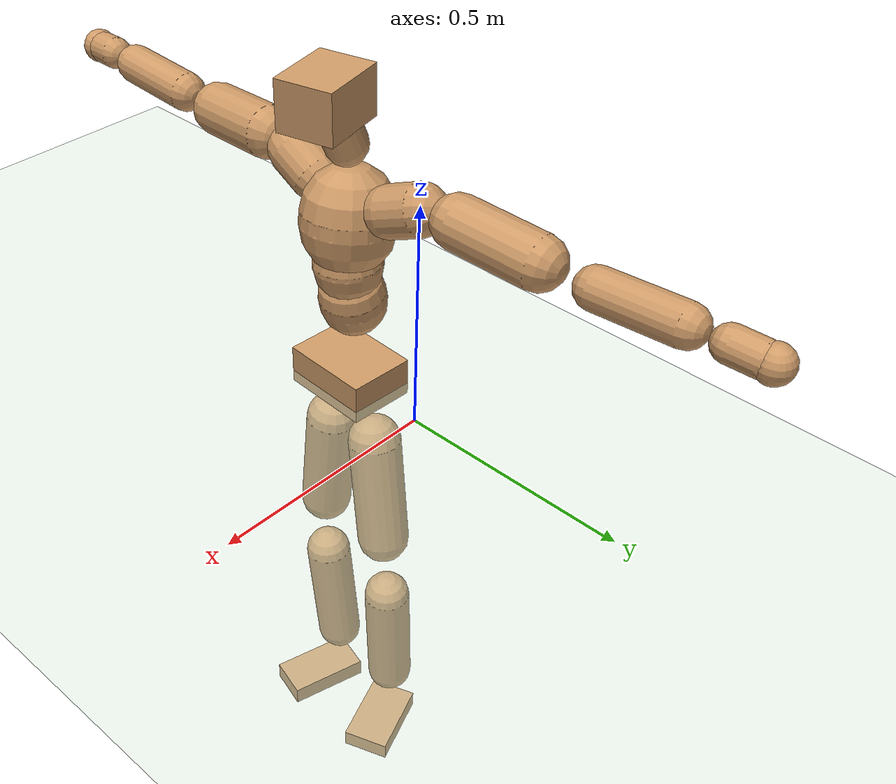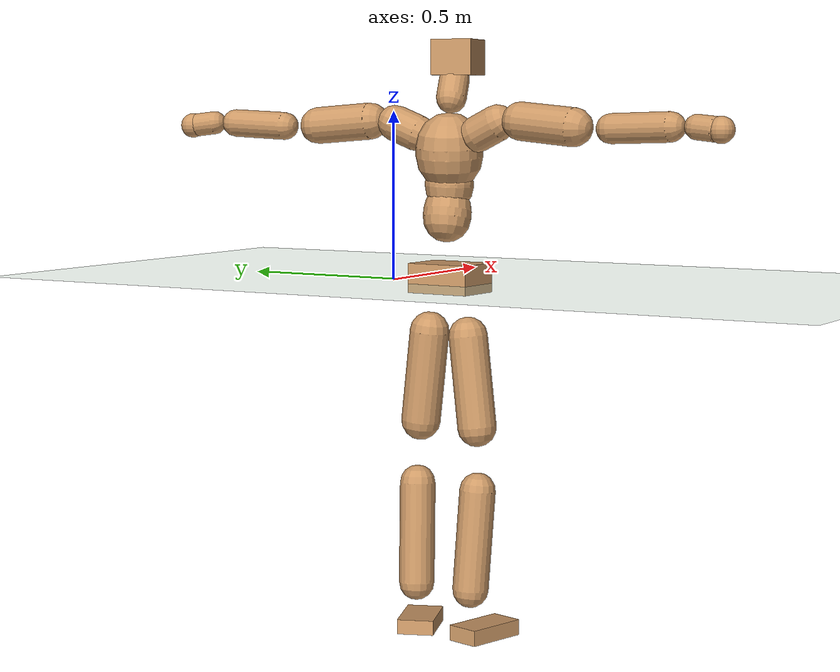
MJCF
<mujoco model="humanoid">
  <compiler coordinate="local" angle="radian"/>
  <default>
    <joint damping="0.0" armature="0.01" stiffness="0.0" limited="true"/>
    <geom conaffinity="1" condim="3" contype="7" margin="0.001" rgba="0.8 0.6 .4 1"/>
  </default>
  <asset>
    <texture type="skybox" builtin="gradient" rgb1=".4 .5 .6" rgb2="0 0 0" width="100" height="100"/>
    <texture builtin="flat" height="1278" mark="cross" markrgb="1 1 1" name="texgeom" random="0.01" rgb1="0.8 0.6 0.4" rgb2="0.8 0.6 0.4" type="cube" width="127"/>
    <texture builtin="checker" height="100" name="texplane" rgb1="0 0 0" rgb2="0.8 0.8 0.8" type="2d" width="100"/>
    <material name="MatPlane" reflectance="0.5" shininess="1" specular="1" texrepeat="60 60" texture="texplane"/>
    <material name="geom" texture="texgeom" texuniform="true"/>
  </asset>
  <worldbody>
    <light cutoff="100" diffuse="1 1 1" dir="-0 0 -1.3" directional="true" exponent="1" pos="0 0 1.3" specular=".1 .1 .1"/>
    <geom conaffinity="1" condim="3" name="floor" pos="0 0 0" rgba="0.8 0.9 0.8 1" size="100 100 .2" type="plane" material="MatPlane"/>
    <body name="Pelvis" pos="-0.0018 -0.2019 0.0227">
      <freejoint name="Pelvis"/>
      <geom type="box" contype="1" conaffinity="1" density="500" pos="-0.0119 0.0006 -0.0085" size="0.0739 0.0998 0.0435" quat="0.9997 0.0000 0.0000 -0.0233" name="Pelvis"/>
      <body name="L_Hip" pos="-0.0225 0.0538 -0.0801">
        <joint name="L_Hip_x" type="hinge" pos="0 0 0" axis="1 0 0" stiffness="800" damping="80" armature="0.02" range="-180.0000 180.0000"/>
        <joint name="L_Hip_y" type="hinge" pos="0 0 0" axis="0 1 0" stiffness="800" damping="80" armature="0.02" range="-180.0000 180.0000"/>
        <joint name="L_Hip_z" type="hinge" pos="0 0 0" axis="0 0 1" stiffness="800" damping="80" armature="0.02" range="-180.0000 180.0000"/>
        <geom type="capsule" contype="1" conaffinity="1" density="500" fromto="0.0016 0.0109 -0.0900 0.0063 0.0437 -0.3599" size="0.0589" name="L_Hip"/>
        <body name="L_Knee" pos="0.0078 0.0547 -0.4498">
          <joint name="L_Knee_x" type="hinge" pos="0 0 0" axis="1 0 0" stiffness="800" damping="80" armature="0.02" range="-180.0000 180.0000"/>
          <joint name="L_Knee_y" type="hinge" pos="0 0 0" axis="0 1 0" stiffness="800" damping="80" armature="0.02" range="-180.0000 180.0000"/>
          <joint name="L_Knee_z" type="hinge" pos="0 0 0" axis="0 0 1" stiffness="800" damping="80" armature="0.02" range="-180.0000 180.0000"/>
          <geom type="capsule" contype="1" conaffinity="1" density="500" fromto="-0.0072 -0.0029 -0.1000 -0.0287 -0.0116 -0.4002" size="0.0532" name="L_Knee"/>
          <body name="L_Ankle" pos="-0.0358 -0.0145 -0.5002">
            <joint name="L_Ankle_x" type="hinge" pos="0 0 0" axis="1 0 0" stiffness="800" damping="80" armature="0.02" range="-180.0000 180.0000"/>
            <joint name="L_Ankle_y" type="hinge" pos="0 0 0" axis="0 1 0" stiffness="800" damping="80" armature="0.02" range="-180.0000 180.0000"/>
            <joint name="L_Ankle_z" type="hinge" pos="0 0 0" axis="0 0 1" stiffness="800" damping="80" armature="0.02" range="-180.0000 180.0000"/>
            <geom type="box" contype="1" conaffinity="1" density="500" pos="0.0647 0.0243 -0.0335" size="0.0918 0.0551 0.022" quat="0.9839 0.0000 0.0000 0.1785" name="L_Ankle"/>
            <body name="L_Toe" pos="0.1293 0.0485 -0.0671">
              <joint name="L_Toe_x" type="hinge" pos="0 0 0" axis="1 0 0" stiffness="500" damping="50" armature="0.02" range="-180.0000 180.0000"/>
              <joint name="L_Toe_y" type="hinge" pos="0 0 0" axis="0 1 0" stiffness="500" damping="50" armature="0.02" range="-180.0000 180.0000"/>
              <joint name="L_Toe_z" type="hinge" pos="0 0 0" axis="0 0 1" stiffness="500" damping="50" armature="0.02" range="-180.0000 180.0000"/>
              <geom type="box" contype="1" conaffinity="1" density="500" pos="0.0000 0.0000 0.0345" size="0.0011 0.0026 0.0011" quat="0.9832 0.0000 0.0000 0.1826" name="L_Toe"/>
            </body>
          </body>
        </body>
      </body>
      <body name="R_Hip" pos="-0.0192 -0.0556 -0.089">
        <joint name="R_Hip_x" type="hinge" pos="0 0 0" axis="1 0 0" stiffness="800" damping="80" armature="0.02" range="-180.0000 180.0000"/>
        <joint name="R_Hip_y" type="hinge" pos="0 0 0" axis="0 1 0" stiffness="800" damping="80" armature="0.02" range="-180.0000 180.0000"/>
        <joint name="R_Hip_z" type="hinge" pos="0 0 0" axis="0 0 1" stiffness="800" damping="80" armature="0.02" range="-180.0000 180.0000"/>
        <geom type="capsule" contype="1" conaffinity="1" density="500" fromto="-0.0014 -0.0109 -0.0889 -0.0055 -0.0436 -0.3557" size="0.0579" name="R_Hip"/>
        <body name="R_Knee" pos="-0.0069 -0.0546 -0.4446">
          <joint name="R_Knee_x" type="hinge" pos="0 0 0" axis="1 0 0" stiffness="800" damping="80" armature="0.02" range="-180.0000 180.0000"/>
          <joint name="R_Knee_y" type="hinge" pos="0 0 0" axis="0 1 0" stiffness="800" damping="80" armature="0.02" range="-180.0000 180.0000"/>
          <joint name="R_Knee_z" type="hinge" pos="0 0 0" axis="0 0 1" stiffness="800" damping="80" armature="0.02" range="-180.0000 180.0000"/>
          <geom type="capsule" contype="1" conaffinity="1" density="500" fromto="-0.0064 0.0042 -0.0987 -0.0256 0.0168 -0.3947" size="0.0534" name="R_Knee"/>
          <body name="R_Ankle" pos="-0.032 0.0211 -0.4934">
            <joint name="R_Ankle_x" type="hinge" pos="0 0 0" axis="1 0 0" stiffness="800" damping="80" armature="0.02" range="-180.0000 180.0000"/>
            <joint name="R_Ankle_y" type="hinge" pos="0 0 0" axis="0 1 0" stiffness="800" damping="80" armature="0.02" range="-180.0000 180.0000"/>
            <joint name="R_Ankle_z" type="hinge" pos="0 0 0" axis="0 0 1" stiffness="800" damping="80" armature="0.02" range="-180.0000 180.0000"/>
            <geom type="box" contype="1" conaffinity="1" density="500" pos="0.0689 -0.0184 -0.0361" size="0.0961 0.0507 0.0234" quat="0.9915 0.0000 0.0000 -0.1301" name="R_Ankle"/>
            <body name="R_Toe" pos="0.1379 -0.0368 -0.0723">
              <joint name="R_Toe_x" type="hinge" pos="0 0 0" axis="1 0 0" stiffness="500" damping="50" armature="0.02" range="-180.0000 180.0000"/>
              <joint name="R_Toe_y" type="hinge" pos="0 0 0" axis="0 1 0" stiffness="500" damping="50" armature="0.02" range="-180.0000 180.0000"/>
              <joint name="R_Toe_z" type="hinge" pos="0 0 0" axis="0 0 1" stiffness="500" damping="50" armature="0.02" range="-180.0000 180.0000"/>
              <geom type="box" contype="1" conaffinity="1" density="500" pos="0.0000 0.0000 0.0359" size="0.0011 0.0025 0.0012" quat="0.9926 0.0000 0.0000 -0.1216" name="R_Toe"/>
            </body>
          </body>
        </body>
      </body>
      <body name="Torso" pos="-0.0297 0.0052 0.1183">
        <joint name="Torso_x" type="hinge" pos="0 0 0" axis="1 0 0" stiffness="1000" damping="100" armature="0.02" range="-180.0000 180.0000"/>
        <joint name="Torso_y" type="hinge" pos="0 0 0" axis="0 1 0" stiffness="1000" damping="100" armature="0.02" range="-180.0000 180.0000"/>
        <joint name="Torso_z" type="hinge" pos="0 0 0" axis="0 0 1" stiffness="1000" damping="100" armature="0.02" range="-180.0000 180.0000"/>
        <geom type="capsule" contype="1" conaffinity="1" density="500" fromto="0.0150 0.0015 0.0732 0.0100 0.0010 0.0488" size="0.0707" name="Torso"/>
        <body name="Spine" pos="0.025 0.0025 0.1221">
          <joint name="Spine_x" type="hinge" pos="0 0 0" axis="1 0 0" stiffness="1000" damping="100" armature="0.02" range="-180.0000 180.0000"/>
          <joint name="Spine_y" type="hinge" pos="0 0 0" axis="0 1 0" stiffness="1000" damping="100" armature="0.02" range="-180.0000 180.0000"/>
          <joint name="Spine_z" type="hinge" pos="0 0 0" axis="0 0 1" stiffness="1000" damping="100" armature="0.02" range="-180.0000 180.0000"/>
          <geom type="capsule" contype="1" conaffinity="1" density="500" fromto="-0.0004 -0.0015 0.0295 -0.0003 -0.0010 0.0197" size="0.0723" name="Spine"/>
          <body name="Chest" pos="-0.0007 -0.0025 0.0492">
            <joint name="Chest_x" type="hinge" pos="0 0 0" axis="1 0 0" stiffness="1000" damping="100" armature="0.02" range="-180.0000 180.0000"/>
            <joint name="Chest_y" type="hinge" pos="0 0 0" axis="0 1 0" stiffness="1000" damping="100" armature="0.02" range="-180.0000 180.0000"/>
            <joint name="Chest_z" type="hinge" pos="0 0 0" axis="0 0 1" stiffness="1000" damping="100" armature="0.02" range="-180.0000 180.0000"/>
            <geom type="capsule" contype="1" conaffinity="1" density="500" fromto="-0.0114 -0.0051 0.0874 -0.0076 -0.0034 0.0583" size="0.0987" name="Chest"/>
            <body name="Neck" pos="-0.0238 -0.0156 0.2093">
              <joint name="Neck_x" type="hinge" pos="0 0 0" axis="1 0 0" stiffness="500" damping="50" armature="0.02" range="-180.0000 180.0000"/>
              <joint name="Neck_y" type="hinge" pos="0 0 0" axis="0 1 0" stiffness="500" damping="50" armature="0.02" range="-180.0000 180.0000"/>
              <joint name="Neck_z" type="hinge" pos="0 0 0" axis="0 0 1" stiffness="500" damping="50" armature="0.02" range="-180.0000 180.0000"/>
              <geom type="capsule" contype="1" conaffinity="1" density="500" fromto="0.0094 0.0019 0.0181 0.0374 0.0077 0.0724" size="0.0444" name="Neck"/>
              <body name="Head" pos="0.0468 0.0096 0.0905">
                <joint name="Head_x" type="hinge" pos="0 0 0" axis="1 0 0" stiffness="500" damping="50" armature="0.02" range="-180.0000 180.0000"/>
                <joint name="Head_y" type="hinge" pos="0 0 0" axis="0 1 0" stiffness="500" damping="50" armature="0.02" range="-180.0000 180.0000"/>
                <joint name="Head_z" type="hinge" pos="0 0 0" axis="0 0 1" stiffness="500" damping="50" armature="0.02" range="-180.0000 180.0000"/>
                <geom type="box" contype="1" conaffinity="1" density="500" pos="0.0244 0.0058 0.0463" size="0.0754 0.0608 0.0519" quat="0.9932 0.0000 0.0000 0.1162" name="Head"/>
              </body>
            </body>
            <body name="L_Thorax" pos="-0.0148 0.0723 0.1143">
              <joint name="L_Thorax_x" type="hinge" pos="0 0 0" axis="1 0 0" stiffness="500" damping="50" armature="0.02" range="-180.0000 180.0000"/>
              <joint name="L_Thorax_y" type="hinge" pos="0 0 0" axis="0 1 0" stiffness="500" damping="50" armature="0.02" range="-180.0000 180.0000"/>
              <joint name="L_Thorax_z" type="hinge" pos="0 0 0" axis="0 0 1" stiffness="500" damping="50" armature="0.02" range="-180.0000 180.0000"/>
              <geom type="capsule" contype="1" conaffinity="1" density="500" fromto="-0.0030 0.0243 0.0100 -0.0119 0.0970 0.0402" size="0.053" name="L_Thorax"/>
              <body name="L_Shoulder" pos="-0.0149 0.1213 0.0502">
                <joint name="L_Shoulder_x" type="hinge" pos="0 0 0" axis="1 0 0" stiffness="500" damping="50" armature="0.02" range="-720.0000 720.0000"/>
                <joint name="L_Shoulder_y" type="hinge" pos="0 0 0" axis="0 1 0" stiffness="500" damping="50" armature="0.02" range="-720.0000 720.0000"/>
                <joint name="L_Shoulder_z" type="hinge" pos="0 0 0" axis="0 0 1" stiffness="500" damping="50" armature="0.02" range="-720.0000 720.0000"/>
                <geom type="capsule" contype="1" conaffinity="1" density="500" fromto="-0.0049 0.0585 -0.0047 -0.0194 0.2338 -0.0188" size="0.0544" name="L_Shoulder"/>
                <body name="L_Elbow" pos="-0.0243 0.2923 -0.0235">
                  <joint name="L_Elbow_x" type="hinge" pos="0 0 0" axis="1 0 0" stiffness="500" damping="50" armature="0.02" range="-720.0000 720.0000"/>
                  <joint name="L_Elbow_y" type="hinge" pos="0 0 0" axis="0 1 0" stiffness="500" damping="50" armature="0.02" range="-720.0000 720.0000"/>
                  <joint name="L_Elbow_z" type="hinge" pos="0 0 0" axis="0 0 1" stiffness="500" damping="50" armature="0.02" range="-720.0000 720.0000"/>
                  <geom type="capsule" contype="1" conaffinity="1" density="500" fromto="-0.0018 0.0593 0.0027 -0.0070 0.2372 0.0107" size="0.0415" name="L_Elbow"/>
                  <body name="L_Wrist" pos="-0.0088 0.2965 0.0134">
                    <joint name="L_Wrist_x" type="hinge" pos="0 0 0" axis="1 0 0" stiffness="300" damping="30" armature="0.02" range="-180.0000 180.0000"/>
                    <joint name="L_Wrist_y" type="hinge" pos="0 0 0" axis="0 1 0" stiffness="300" damping="30" armature="0.02" range="-180.0000 180.0000"/>
                    <joint name="L_Wrist_z" type="hinge" pos="0 0 0" axis="0 0 1" stiffness="300" damping="30" armature="0.02" range="-180.0000 180.0000"/>
                    <geom type="capsule" contype="1" conaffinity="1" density="500" fromto="-0.0034 0.0183 -0.0022 -0.0136 0.0732 -0.0087" size="0.035" name="L_Wrist"/>
                    <body name="L_Hand" pos="-0.017 0.0915 -0.0108">
                      <joint name="L_Hand_x" type="hinge" pos="0 0 0" axis="1 0 0" stiffness="300" damping="30" armature="0.02" range="-180.0000 180.0000"/>
                      <joint name="L_Hand_y" type="hinge" pos="0 0 0" axis="0 1 0" stiffness="300" damping="30" armature="0.02" range="-180.0000 180.0000"/>
                      <joint name="L_Hand_z" type="hinge" pos="0 0 0" axis="0 0 1" stiffness="300" damping="30" armature="0.02" range="-180.0000 180.0000"/>
                      <geom type="sphere" contype="1" conaffinity="1" density="500" size="0.0372" pos="0.0000 0.0000 0.0000" name="L_Hand"/>
                    </body>
                  </body>
                </body>
              </body>
            </body>
            <body name="R_Thorax" pos="-0.0185 -0.0824 0.1136">
              <joint name="R_Thorax_x" type="hinge" pos="0 0 0" axis="1 0 0" stiffness="500" damping="50" armature="0.02" range="-180.0000 180.0000"/>
              <joint name="R_Thorax_y" type="hinge" pos="0 0 0" axis="0 1 0" stiffness="500" damping="50" armature="0.02" range="-180.0000 180.0000"/>
              <joint name="R_Thorax_z" type="hinge" pos="0 0 0" axis="0 0 1" stiffness="500" damping="50" armature="0.02" range="-180.0000 180.0000"/>
              <geom type="capsule" contype="1" conaffinity="1" density="500" fromto="-0.0009 -0.0221 0.0107 -0.0035 -0.0883 0.0429" size="0.0532" name="R_Thorax"/>
              <body name="R_Shoulder" pos="-0.0044 -0.1104 0.0536">
                <joint name="R_Shoulder_x" type="hinge" pos="0 0 0" axis="1 0 0" stiffness="500" damping="50" armature="0.02" range="-720.0000 720.0000"/>
                <joint name="R_Shoulder_y" type="hinge" pos="0 0 0" axis="0 1 0" stiffness="500" damping="50" armature="0.02" range="-720.0000 720.0000"/>
                <joint name="R_Shoulder_z" type="hinge" pos="0 0 0" axis="0 0 1" stiffness="500" damping="50" armature="0.02" range="-720.0000 720.0000"/>
                <geom type="capsule" contype="1" conaffinity="1" density="500" fromto="-0.0060 -0.0586 -0.0052 -0.0239 -0.2344 -0.0208" size="0.0558" name="R_Shoulder"/>
                <body name="R_Elbow" pos="-0.0299 -0.2929 -0.026">
                  <joint name="R_Elbow_x" type="hinge" pos="0 0 0" axis="1 0 0" stiffness="500" damping="50" armature="0.02" range="-720.0000 720.0000"/>
                  <joint name="R_Elbow_y" type="hinge" pos="0 0 0" axis="0 1 0" stiffness="500" damping="50" armature="0.02" range="-720.0000 720.0000"/>
                  <joint name="R_Elbow_z" type="hinge" pos="0 0 0" axis="0 0 1" stiffness="500" damping="50" armature="0.02" range="-720.0000 720.0000"/>
                  <geom type="capsule" contype="1" conaffinity="1" density="500" fromto="-0.0015 -0.0604 0.0020 -0.0060 -0.2415 0.0080" size="0.0423" name="R_Elbow"/>
                  <body name="R_Wrist" pos="-0.0075 -0.3019 0.01">
                    <joint name="R_Wrist_x" type="hinge" pos="0 0 0" axis="1 0 0" stiffness="300" damping="30" armature="0.02" range="-180.0000 180.0000"/>
                    <joint name="R_Wrist_y" type="hinge" pos="0 0 0" axis="0 1 0" stiffness="300" damping="30" armature="0.02" range="-180.0000 180.0000"/>
                    <joint name="R_Wrist_z" type="hinge" pos="0 0 0" axis="0 0 1" stiffness="300" damping="30" armature="0.02" range="-180.0000 180.0000"/>
                    <geom type="capsule" contype="1" conaffinity="1" density="500" fromto="-0.0022 -0.0185 -0.0018 -0.0088 -0.0738 -0.0070" size="0.0353" name="R_Wrist"/>
                    <body name="R_Hand" pos="-0.011 -0.0923 -0.0088">
                      <joint name="R_Hand_x" type="hinge" pos="0 0 0" axis="1 0 0" stiffness="300" damping="30" armature="0.02" range="-180.0000 180.0000"/>
                      <joint name="R_Hand_y" type="hinge" pos="0 0 0" axis="0 1 0" stiffness="300" damping="30" armature="0.02" range="-180.0000 180.0000"/>
                      <joint name="R_Hand_z" type="hinge" pos="0 0 0" axis="0 0 1" stiffness="300" damping="30" armature="0.02" range="-180.0000 180.0000"/>
                      <geom type="sphere" contype="1" conaffinity="1" density="500" size="0.0373" pos="0.0000 0.0000 0.0000" name="R_Hand"/>
                    </body>
                  </body>
                </body>
              </body>
            </body>
          </body>
        </body>
      </body>
    </body>
  </worldbody>
  <actuator>
    <motor name="L_Hip_x" joint="L_Hip_x" gear="500"/>
    <motor name="L_Hip_y" joint="L_Hip_y" gear="500"/>
    <motor name="L_Hip_z" joint="L_Hip_z" gear="500"/>
    <motor name="L_Knee_x" joint="L_Knee_x" gear="500"/>
    <motor name="L_Knee_y" joint="L_Knee_y" gear="500"/>
    <motor name="L_Knee_z" joint="L_Knee_z" gear="500"/>
    <motor name="L_Ankle_x" joint="L_Ankle_x" gear="500"/>
    <motor name="L_Ankle_y" joint="L_Ankle_y" gear="500"/>
    <motor name="L_Ankle_z" joint="L_Ankle_z" gear="500"/>
    <motor name="L_Toe_x" joint="L_Toe_x" gear="500"/>
    <motor name="L_Toe_y" joint="L_Toe_y" gear="500"/>
    <motor name="L_Toe_z" joint="L_Toe_z" gear="500"/>
    <motor name="R_Hip_x" joint="R_Hip_x" gear="500"/>
    <motor name="R_Hip_y" joint="R_Hip_y" gear="500"/>
    <motor name="R_Hip_z" joint="R_Hip_z" gear="500"/>
    <motor name="R_Knee_x" joint="R_Knee_x" gear="500"/>
    <motor name="R_Knee_y" joint="R_Knee_y" gear="500"/>
    <motor name="R_Knee_z" joint="R_Knee_z" gear="500"/>
    <motor name="R_Ankle_x" joint="R_Ankle_x" gear="500"/>
    <motor name="R_Ankle_y" joint="R_Ankle_y" gear="500"/>
    <motor name="R_Ankle_z" joint="R_Ankle_z" gear="500"/>
    <motor name="R_Toe_x" joint="R_Toe_x" gear="500"/>
    <motor name="R_Toe_y" joint="R_Toe_y" gear="500"/>
    <motor name="R_Toe_z" joint="R_Toe_z" gear="500"/>
    <motor name="Torso_x" joint="Torso_x" gear="500"/>
    <motor name="Torso_y" joint="Torso_y" gear="500"/>
    <motor name="Torso_z" joint="Torso_z" gear="500"/>
    <motor name="Spine_x" joint="Spine_x" gear="500"/>
    <motor name="Spine_y" joint="Spine_y" gear="500"/>
    <motor name="Spine_z" joint="Spine_z" gear="500"/>
    <motor name="Chest_x" joint="Chest_x" gear="500"/>
    <motor name="Chest_y" joint="Chest_y" gear="500"/>
    <motor name="Chest_z" joint="Chest_z" gear="500"/>
    <motor name="Neck_x" joint="Neck_x" gear="500"/>
    <motor name="Neck_y" joint="Neck_y" gear="500"/>
    <motor name="Neck_z" joint="Neck_z" gear="500"/>
    <motor name="Head_x" joint="Head_x" gear="500"/>
    <motor name="Head_y" joint="Head_y" gear="500"/>
    <motor name="Head_z" joint="Head_z" gear="500"/>
    <motor name="L_Thorax_x" joint="L_Thorax_x" gear="500"/>
    <motor name="L_Thorax_y" joint="L_Thorax_y" gear="500"/>
    <motor name="L_Thorax_z" joint="L_Thorax_z" gear="500"/>
    <motor name="L_Shoulder_x" joint="L_Shoulder_x" gear="500"/>
    <motor name="L_Shoulder_y" joint="L_Shoulder_y" gear="500"/>
    <motor name="L_Shoulder_z" joint="L_Shoulder_z" gear="500"/>
    <motor name="L_Elbow_x" joint="L_Elbow_x" gear="500"/>
    <motor name="L_Elbow_y" joint="L_Elbow_y" gear="500"/>
    <motor name="L_Elbow_z" joint="L_Elbow_z" gear="500"/>
    <motor name="L_Wrist_x" joint="L_Wrist_x" gear="500"/>
    <motor name="L_Wrist_y" joint="L_Wrist_y" gear="500"/>
    <motor name="L_Wrist_z" joint="L_Wrist_z" gear="500"/>
    <motor name="L_Hand_x" joint="L_Hand_x" gear="500"/>
    <motor name="L_Hand_y" joint="L_Hand_y" gear="500"/>
    <motor name="L_Hand_z" joint="L_Hand_z" gear="500"/>
    <motor name="R_Thorax_x" joint="R_Thorax_x" gear="500"/>
    <motor name="R_Thorax_y" joint="R_Thorax_y" gear="500"/>
    <motor name="R_Thorax_z" joint="R_Thorax_z" gear="500"/>
    <motor name="R_Shoulder_x" joint="R_Shoulder_x" gear="500"/>
    <motor name="R_Shoulder_y" joint="R_Shoulder_y" gear="500"/>
    <motor name="R_Shoulder_z" joint="R_Shoulder_z" gear="500"/>
    <motor name="R_Elbow_x" joint="R_Elbow_x" gear="500"/>
    <motor name="R_Elbow_y" joint="R_Elbow_y" gear="500"/>
    <motor name="R_Elbow_z" joint="R_Elbow_z" gear="500"/>
    <motor name="R_Wrist_x" joint="R_Wrist_x" gear="500"/>
    <motor name="R_Wrist_y" joint="R_Wrist_y" gear="500"/>
    <motor name="R_Wrist_z" joint="R_Wrist_z" gear="500"/>
    <motor name="R_Hand_x" joint="R_Hand_x" gear="500"/>
    <motor name="R_Hand_y" joint="R_Hand_y" gear="500"/>
    <motor name="R_Hand_z" joint="R_Hand_z" gear="500"/>
  </actuator>
  <contact>
    <exclude body1="Torso" body2="Chest"/>
    <exclude body1="Head" body2="Chest"/>
    <exclude body1="R_Knee" body2="R_Toe"/>
    <exclude body1="R_Knee" body2="L_Ankle"/>
    <exclude body1="R_Knee" body2="L_Toe"/>
    <exclude body1="L_Knee" body2="L_Toe"/>
    <exclude body1="L_Knee" body2="R_Ankle"/>
    <exclude body1="L_Knee" body2="R_Toe"/>
    <exclude body1="L_Shoulder" body2="Chest"/>
    <exclude body1="R_Shoulder" body2="Chest"/>
  </contact>
  <sensor/>
  <size njmax="700" nconmax="700"/>
</mujoco>
